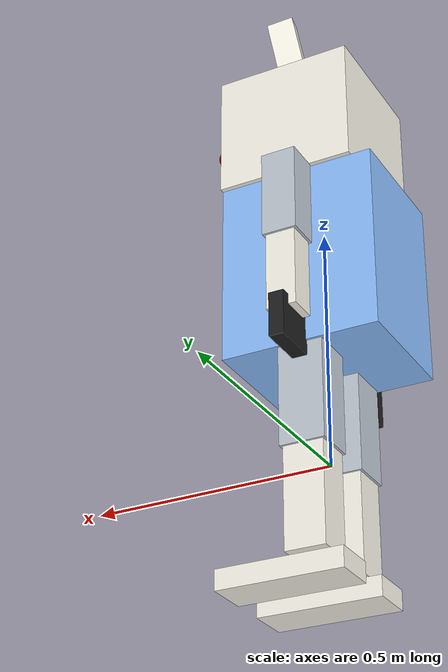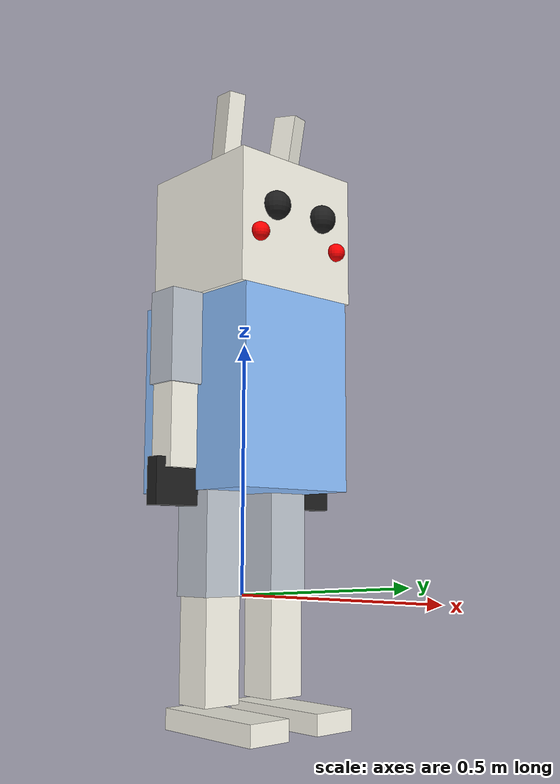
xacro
<?xml version="1.0"?>
<robot name="heart_robot" xmlns:xacro="http://www.ros.org/wiki/xacro">

  <!-- Material -->
  <material name="body_blue">
    <color rgba="0.55 0.75 1.0 1.0"/>
  </material>

  <material name="cream_white">
    <color rgba="0.98 0.97 0.92 1.0"/>
  </material>

  <material name="soft_gray">
    <color rgba="0.75 0.78 0.82 1.0"/>
  </material>

  <material name="eye_black">
    <color rgba="0.12 0.12 0.12 1.0"/>
  </material>

  <material name="cheek_red">
    <color rgba="1.0 0.0 0.0 1.0"/>
  </material>

  <material name="cute_yellow">
    <color rgba="1.0 0.85 0.0 1.0"/>
  </material>

  <!-- 몸통(base_link) -->
  <link name="base_link">
    <visual>
      <origin xyz="0 0 0.39" rpy="0 0 0"/>
      <geometry>
        <box size="0.32 0.26 0.38"/>
      </geometry>
      <material name="body_blue"/>
    </visual>

    <collision>
      <origin xyz="0 0 0.39" rpy="0 0 0"/>
      <geometry>
        <box size="0.32 0.26 0.38"/>
      </geometry>
    </collision>

    <inertial>
      <origin xyz="0 0 0.39" rpy="0 0 0"/>
      <mass value="4.5"/>
      <inertia ixx="0.08" ixy="0.0" ixz="0.0"
               iyy="0.08" iyz="0.0"
               izz="0.08"/>
    </inertial>
  </link>

  <!-- 머리 -->
  <link name="head_link">
    <visual>
      <origin xyz="0 0 0" rpy="0 0 0"/>
      <geometry>
        <box size="0.28 0.28 0.26"/>
      </geometry>
      <material name="cream_white"/>
    </visual>

    <collision>
      <origin xyz="0 0 0" rpy="0 0 0"/>
      <geometry>
        <box size="0.28 0.28 0.26"/>
      </geometry>
    </collision>

    <inertial>
      <origin xyz="0 0 0" rpy="0 0 0"/>
      <mass value="1.2"/>
      <inertia ixx="0.015" ixy="0.0" ixz="0.0"
               iyy="0.015" iyz="0.0"
               izz="0.015"/>
    </inertial>
  </link>

  <joint name="head_joint" type="fixed">
    <parent link="base_link"/>
    <child link="head_link"/>
    <origin xyz="0.02 0 0.71" rpy="0 0 0"/>
  </joint>

  <link name="left_eye_link">
    <visual>
      <origin xyz="0 0 0" rpy="0 0 0"/>
      <geometry>
        <sphere radius="0.028"/>
      </geometry>
      <material name="eye_black"/>
    </visual>
  </link>

  <joint name="left_eye_joint" type="fixed">
    <parent link="head_link"/>
    <child link="left_eye_link"/>
    <origin xyz="0.145 0.06 0.03" rpy="0 0 0"/>
  </joint>

  <link name="right_eye_link">
    <visual>
      <origin xyz="0 0 0" rpy="0 0 0"/>
      <geometry>
        <sphere radius="0.028"/>
      </geometry>
      <material name="eye_black"/>
    </visual>
  </link>

  <joint name="right_eye_joint" type="fixed">
    <parent link="head_link"/>
    <child link="right_eye_link"/>
    <origin xyz="0.145 -0.06 0.03" rpy="0 0 0"/>
  </joint>

  <link name="left_cheek_link">
    <visual>
      <origin xyz="0 0 0" rpy="0 0 0"/>
      <geometry>
        <sphere radius="0.018"/>
      </geometry>
      <material name="cheek_red"/>
    </visual>
  </link>

  <joint name="left_cheek_joint" type="fixed">
    <parent link="head_link"/>
    <child link="left_cheek_link"/>
    <origin xyz="0.145 0.10 -0.03" rpy="0 0 0"/>
  </joint>

  <link name="right_cheek_link">
    <visual>
      <origin xyz="0 0 0" rpy="0 0 0"/>
      <geometry>
        <sphere radius="0.018"/>
      </geometry>
      <material name="cheek_red"/>
    </visual>
  </link>

  <joint name="right_cheek_joint" type="fixed">
    <parent link="head_link"/>
    <child link="right_cheek_link"/>
    <origin xyz="0.145 -0.10 -0.03" rpy="0 0 0"/>
  </joint>

  <!-- 왼팔 -->
  <link name="left_upper_arm_link">
    <visual>
      <origin xyz="0 0 -0.09" rpy="0 0 0"/>
      <geometry>
        <box size="0.07 0.07 0.18"/>
      </geometry>
      <material name="soft_gray"/>
    </visual>

    <collision>
      <origin xyz="0 0 -0.09" rpy="0 0 0"/>
      <geometry>
        <box size="0.07 0.07 0.18"/>
      </geometry>
    </collision>

    <inertial>
      <origin xyz="0 0 -0.09" rpy="0 0 0"/>
      <mass value="0.5"/>
      <inertia ixx="0.005" ixy="0.0" ixz="0.0"
               iyy="0.005" iyz="0.0"
               izz="0.005"/>
    </inertial>
  </link>

  <joint name="left_shoulder_joint" type="revolute">
    <parent link="base_link"/>
    <child link="left_upper_arm_link"/>
    <origin xyz="0 0.17 0.58" rpy="0 0 0"/>
    <axis xyz="0 1 0"/>
    <limit lower="-2.5" upper="0.5" effort="10" velocity="2.0"/>
  </joint>

  <link name="left_lower_arm_link">
    <visual>
      <origin xyz="0 0 -0.08" rpy="0 0 0"/>
      <geometry>
        <box size="0.06 0.06 0.16"/>
      </geometry>
      <material name="cream_white"/>
    </visual>

    <collision>
      <origin xyz="0 0 -0.08" rpy="0 0 0"/>
      <geometry>
        <box size="0.06 0.06 0.16"/>
      </geometry>
    </collision>

    <inertial>
      <origin xyz="0 0 -0.08" rpy="0 0 0"/>
      <mass value="0.4"/>
      <inertia ixx="0.004" ixy="0.0" ixz="0.0"
               iyy="0.004" iyz="0.0"
               izz="0.004"/>
    </inertial>
  </link>

  <joint name="left_elbow_joint" type="revolute">
    <parent link="left_upper_arm_link"/>
    <child link="left_lower_arm_link"/>
    <origin xyz="0 0 -0.18" rpy="0 0 0"/>
    <axis xyz="1 0 0"/>
    <limit lower="-2.0" upper="2.0" effort="10" velocity="2.0"/>
  </joint>

  <link name="left_hand_link">
    <visual>
      <origin xyz="0 0 -0.045" rpy="0 0 0"/>
      <geometry>
        <box size="0.03 0.10 0.09"/>
      </geometry>
      <material name="eye_black"/>
    </visual>

    <visual>
      <origin xyz="0 0 0.01" rpy="0 0 0"/>
      <geometry>
        <box size="0.025 0.05 0.03"/>
      </geometry>
      <material name="soft_gray"/>
    </visual>

    <collision>
      <origin xyz="0 0 -0.045" rpy="0 0 0"/>
      <geometry>
        <box size="0.03 0.10 0.09"/>
      </geometry>
    </collision>

    <collision>
      <origin xyz="0 0 0.01" rpy="0 0 0"/>
      <geometry>
        <box size="0.025 0.05 0.03"/>
      </geometry>
    </collision>

    <inertial>
      <origin xyz="0 0 -0.02" rpy="0 0 0"/>
      <mass value="0.15"/>
      <inertia ixx="0.001" ixy="0.0" ixz="0.0"
               iyy="0.001" iyz="0.0"
               izz="0.001"/>
    </inertial>
  </link>

  <joint name="left_wrist_joint" type="revolute">
    <parent link="left_lower_arm_link"/>
    <child link="left_hand_link"/>
    <origin xyz="0 0 -0.14" rpy="0 0 0"/>
    <axis xyz="0 0 1"/>
    <limit lower="-1.0" upper="1.0" effort="5" velocity="2.0"/>
  </joint>

  <!-- 오른팔 -->
  <link name="right_upper_arm_link">
    <visual>
      <origin xyz="0 0 -0.09" rpy="0 0 0"/>
      <geometry>
        <box size="0.07 0.07 0.18"/>
      </geometry>
      <material name="soft_gray"/>
    </visual>

    <collision>
      <origin xyz="0 0 -0.09" rpy="0 0 0"/>
      <geometry>
        <box size="0.07 0.07 0.18"/>
      </geometry>
    </collision>

    <inertial>
      <origin xyz="0 0 -0.09" rpy="0 0 0"/>
      <mass value="0.5"/>
      <inertia ixx="0.005" ixy="0.0" ixz="0.0"
               iyy="0.005" iyz="0.0"
               izz="0.005"/>
    </inertial>
  </link>

  <joint name="right_shoulder_joint" type="revolute">
    <parent link="base_link"/>
    <child link="right_upper_arm_link"/>
    <origin xyz="0 -0.17 0.58" rpy="0 0 0"/>
    <axis xyz="0 1 0"/>
    <limit lower="-2.5" upper="0.5" effort="10" velocity="2.0"/>
  </joint>

  <link name="right_lower_arm_link">
    <visual>
      <origin xyz="0 0 -0.08" rpy="0 0 0"/>
      <geometry>
        <box size="0.06 0.06 0.16"/>
      </geometry>
      <material name="cream_white"/>
    </visual>

    <collision>
      <origin xyz="0 0 -0.08" rpy="0 0 0"/>
      <geometry>
        <box size="0.06 0.06 0.16"/>
      </geometry>
    </collision>

    <inertial>
      <origin xyz="0 0 -0.08" rpy="0 0 0"/>
      <mass value="0.4"/>
      <inertia ixx="0.004" ixy="0.0" ixz="0.0"
               iyy="0.004" iyz="0.0"
               izz="0.004"/>
    </inertial>
  </link>

  <joint name="right_elbow_joint" type="revolute">
    <parent link="right_upper_arm_link"/>
    <child link="right_lower_arm_link"/>
    <origin xyz="0 0 -0.18" rpy="0 0 0"/>
    <axis xyz="1 0 0"/>
    <limit lower="-2.0" upper="2.0" effort="10" velocity="2.0"/>
  </joint>

  <link name="right_hand_link">
    <visual>
      <origin xyz="0 0 -0.045" rpy="0 0 0"/>
      <geometry>
        <box size="0.03 0.10 0.09"/>
      </geometry>
      <material name="eye_black"/>
    </visual>

    <visual>
      <origin xyz="0 0 0.01" rpy="0 0 0"/>
      <geometry>
        <box size="0.025 0.05 0.03"/>
      </geometry>
      <material name="soft_gray"/>
    </visual>

    <collision>
      <origin xyz="0 0 -0.045" rpy="0 0 0"/>
      <geometry>
        <box size="0.03 0.10 0.09"/>
      </geometry>
    </collision>

    <collision>
      <origin xyz="0 0 0.01" rpy="0 0 0"/>
      <geometry>
        <box size="0.025 0.05 0.03"/>
      </geometry>
    </collision>

    <inertial>
      <origin xyz="0 0 -0.02" rpy="0 0 0"/>
      <mass value="0.15"/>
      <inertia ixx="0.001" ixy="0.0" ixz="0.0"
               iyy="0.001" iyz="0.0"
               izz="0.001"/>
    </inertial>
  </link>

  <joint name="right_wrist_joint" type="revolute">
    <parent link="right_lower_arm_link"/>
    <child link="right_hand_link"/>
    <origin xyz="0 0 -0.14" rpy="0 0 0"/>
    <axis xyz="0 0 1"/>
    <limit lower="-1.0" upper="1.0" effort="5" velocity="2.0"/>
  </joint>

  <!-- 왼다리 (hip + knee) -->
  <link name="left_upper_leg_link">
    <visual>
      <origin xyz="0 0 -0.10" rpy="0 0 0"/>
      <geometry>
        <box size="0.09 0.09 0.20"/>
      </geometry>
      <material name="soft_gray"/>
    </visual>

    <collision>
      <origin xyz="0 0 -0.10" rpy="0 0 0"/>
      <geometry>
        <box size="0.09 0.09 0.20"/>
      </geometry>
    </collision>

    <inertial>
      <origin xyz="0 0 -0.10" rpy="0 0 0"/>
      <mass value="0.7"/>
      <inertia ixx="0.008" ixy="0.0" ixz="0.0"
               iyy="0.008" iyz="0.0"
               izz="0.008"/>
    </inertial>
  </link>

  <joint name="left_hip_joint" type="fixed">
    <parent link="base_link"/>
    <child link="left_upper_leg_link"/>
    <origin xyz="0 0.08 0.20" rpy="0 0 0"/>
  </joint>

  <link name="left_lower_leg_link">
    <visual>
      <origin xyz="0 0 -0.10" rpy="0 0 0"/>
      <geometry>
        <box size="0.08 0.08 0.20"/>
      </geometry>
      <material name="cream_white"/>
    </visual>

    <collision>
      <origin xyz="0 0 -0.10" rpy="0 0 0"/>
      <geometry>
        <box size="0.08 0.08 0.20"/>
      </geometry>
    </collision>

    <inertial>
      <origin xyz="0 0 -0.10" rpy="0 0 0"/>
      <mass value="0.6"/>
      <inertia ixx="0.006" ixy="0.0" ixz="0.0"
               iyy="0.006" iyz="0.0"
               izz="0.006"/>
    </inertial>
  </link>

  <joint name="left_knee_joint" type="fixed">
    <parent link="left_upper_leg_link"/>
    <child link="left_lower_leg_link"/>
    <origin xyz="0 0 -0.20" rpy="0 0 0"/>
  </joint>

  <link name="left_foot_link">
  <visual>
    <origin xyz="0.05 0 -0.03" rpy="0 0 0"/>
    <geometry>
      <box size="0.25 0.09 0.04"/>
    </geometry>
    <material name="cream_white"/>
  </visual>

  <collision>
    <origin xyz="0.05 0 -0.03" rpy="0 0 0"/>
    <geometry>
      <box size="0.25 0.09 0.04"/>
    </geometry>
  </collision>

  <inertial>
    <origin xyz="0.05 0 -0.03" rpy="0 0 0"/>
    <mass value="10.0"/> <inertia ixx="0.01" ixy="0.0" ixz="0.0"
             iyy="0.05" iyz="0.0"
             izz="0.05"/>
  </inertial>
</link>

  <joint name="left_foot_joint" type="fixed">
    <parent link="left_lower_leg_link"/>
    <child link="left_foot_link"/>
    <origin xyz="0 0 -0.20" rpy="0 0 0"/>
  </joint>

  <!-- 오른다리 (hip + knee) -->
  <link name="right_upper_leg_link">
    <visual>
      <origin xyz="0 0 -0.10" rpy="0 0 0"/>
      <geometry>
        <box size="0.09 0.09 0.20"/>
      </geometry>
      <material name="soft_gray"/>
    </visual>

    <collision>
      <origin xyz="0 0 -0.10" rpy="0 0 0"/>
      <geometry>
        <box size="0.09 0.09 0.20"/>
      </geometry>
    </collision>

    <inertial>
      <origin xyz="0 0 -0.10" rpy="0 0 0"/>
      <mass value="0.7"/>
      <inertia ixx="0.008" ixy="0.0" ixz="0.0"
               iyy="0.008" iyz="0.0"
               izz="0.008"/>
    </inertial>
  </link>

  <joint name="right_hip_joint" type="fixed">
    <parent link="base_link"/>
    <child link="right_upper_leg_link"/>
    <origin xyz="0 -0.08 0.20" rpy="0 0 0"/>
  </joint>

  <link name="right_lower_leg_link">
    <visual>
      <origin xyz="0 0 -0.10" rpy="0 0 0"/>
      <geometry>
        <box size="0.08 0.08 0.20"/>
      </geometry>
      <material name="cream_white"/>
    </visual>

    <collision>
      <origin xyz="0 0 -0.10" rpy="0 0 0"/>
      <geometry>
        <box size="0.08 0.08 0.20"/>
      </geometry>
    </collision>

    <inertial>
      <origin xyz="0 0 -0.10" rpy="0 0 0"/>
      <mass value="0.6"/>
      <inertia ixx="0.006" ixy="0.0" ixz="0.0"
               iyy="0.006" iyz="0.0"
               izz="0.006"/>
    </inertial>
  </link>

  <joint name="right_knee_joint" type="fixed">
    <parent link="right_upper_leg_link"/>
    <child link="right_lower_leg_link"/>
    <origin xyz="0 0 -0.20" rpy="0 0 0"/>
  </joint>

  <link name="right_foot_link">
    <visual>
      <origin xyz="0.05 0 -0.03" rpy="0 0 0"/>
      <geometry>
        <box size="0.25 0.09 0.04"/>
      </geometry>
      <material name="cream_white"/>
    </visual>

    <collision>
      <origin xyz="0.05 0 -0.03" rpy="0 0 0"/>
      <geometry>
        <box size="0.25 0.09 0.04"/>
      </geometry>
    </collision>

    <inertial>
      <origin xyz="0.05 0 -0.03" rpy="0 0 0"/>
      <mass value="10.0"/>
      <inertia ixx="0.01" ixy="0.0" ixz="0.0"
               iyy="0.05" iyz="0.0"
               izz="0.05"/>
    </inertial>
  </link>

  <joint name="right_foot_joint" type="fixed">
    <parent link="right_lower_leg_link"/>
    <child link="right_foot_link"/>
    <origin xyz="0 0 -0.20" rpy="0 0 0"/>
  </joint>

  <!-- 왼쪽 토끼귀 -->
  <link name="left_bunny_ear_link">
    <visual>
      <origin xyz="0 0 0.08" rpy="0 0 0"/>
      <geometry>
        <box size="0.055 0.035 0.16"/>
      </geometry>
      <material name="cream_white"/>
    </visual>

    <visual>
      <origin xyz="0.002 0 0.08" rpy="0 0 0"/>
      <geometry>
        <box size="0.03 0.018 0.12"/>
      </geometry>
      <material name="cream_white"/>
    </visual>
  </link>

  <joint name="left_bunny_ear_joint" type="fixed">
    <parent link="head_link"/>
    <child link="left_bunny_ear_link"/>
    <origin xyz="0.00 0.075 0.13" rpy="0 0.18 0.18"/>
  </joint>

  <!-- 오른쪽 토끼귀 -->
  <link name="right_bunny_ear_link">
    <visual>
      <origin xyz="0 0 0.08" rpy="0 0 0"/>
      <geometry>
        <box size="0.055 0.035 0.16"/>
      </geometry>
      <material name="cream_white"/>
    </visual>

    <visual>
      <origin xyz="0.002 0 0.08" rpy="0 0 0"/>
      <geometry>
        <box size="0.03 0.018 0.12"/>
      </geometry>
      <material name="cream_white"/>
    </visual>
  </link>

  <joint name="right_bunny_ear_joint" type="fixed">
    <parent link="head_link"/>
    <child link="right_bunny_ear_link"/>
    <origin xyz="0.00 -0.075 0.13" rpy="0 0.18 -0.18"/>
  </joint>

  <!-- Gazebo Materials -->
  <gazebo>
    <plugin name="gazebo_ros2_control" filename="libgazebo_ros2_control.so">
      <parameters>$(find heart_robot_description)/config/controller.yaml</parameters>
    </plugin>
  </gazebo>

  <gazebo reference="base_link">
    <material>Gazebo/Blue</material>
  </gazebo>

  <gazebo reference="head_link">
    <material>Gazebo/White</material>
  </gazebo>

  <gazebo reference="left_upper_arm_link">
    <material>Gazebo/Grey</material>
  </gazebo>

  <gazebo reference="left_lower_arm_link">
    <material>Gazebo/White</material>
  </gazebo>

  <gazebo reference="left_hand_link">
    <material>Gazebo/Black</material>
  </gazebo>

  <gazebo reference="right_upper_arm_link">
    <material>Gazebo/Grey</material>
  </gazebo>

  <gazebo reference="right_lower_arm_link">
    <material>Gazebo/White</material>
  </gazebo>

  <gazebo reference="right_hand_link">
    <material>Gazebo/Black</material>
  </gazebo>

  <gazebo reference="left_upper_leg_link">
    <material>Gazebo/Grey</material>
  </gazebo>

  <gazebo reference="left_lower_leg_link">
    <material>Gazebo/White</material>
  </gazebo>

  <gazebo reference="right_upper_leg_link">
    <material>Gazebo/Grey</material>
  </gazebo>

  <gazebo reference="right_lower_leg_link">
    <material>Gazebo/White</material>
  </gazebo>

  <gazebo reference="left_eye_link">
    <material>Gazebo/Black</material>
  </gazebo>

  <gazebo reference="right_eye_link">
    <material>Gazebo/Black</material>
  </gazebo>

  <gazebo reference="left_cheek_link">
    <material>Gazebo/Red</material>
  </gazebo>

  <gazebo reference="left_foot_link">
    <kp>1000000.0</kp>
    <kd>1.0</kd>
    <mu1>200.0</mu1>
    <mu2>200.0</mu2>
    <material>Gazebo/White</material>
  </gazebo>

  <gazebo reference="right_foot_link">
    <kp>1000000.0</kp>
    <kd>1.0</kd>
    <mu1>200.0</mu1>
    <mu2>200.0</mu2>
    <material>Gazebo/White</material>
  </gazebo>

  <gazebo reference="right_cheek_link">
    <material>Gazebo/Red</material>
  </gazebo>

  <gazebo reference="left_bunny_ear_link">
    <material>Gazebo/White</material>
  </gazebo>

  <gazebo reference="right_bunny_ear_link">
    <material>Gazebo/White</material>
  </gazebo>

<ros2_control name="GazeboSystem" type="system">
  <hardware>
    <plugin>gazebo_ros2_control/GazeboSystem</plugin>
  </hardware>

  <joint name="left_shoulder_joint">
    <command_interface name="position"/>
    <state_interface name="position">
      <param name="initial_value">0.0</param> </state_interface>
    <state_interface name="velocity"/>
  </joint>

  <joint name="right_shoulder_joint">
    <command_interface name="position"/>
    <state_interface name="position">
      <param name="initial_value">0.0</param> </state_interface>
    <state_interface name="velocity"/>
  </joint>

  <joint name="left_elbow_joint">
    <command_interface name="position"/>
    <state_interface name="position">
      <param name="initial_value">0.0</param></state_interface>
    <state_interface name="velocity"/>
  </joint>

  <joint name="right_elbow_joint">
    <command_interface name="position"/>
    <state_interface name="position">
      <param name="initial_value">0.0</param></state_interface>
    <state_interface name="velocity"/>
  </joint>
</ros2_control>

</robot>
